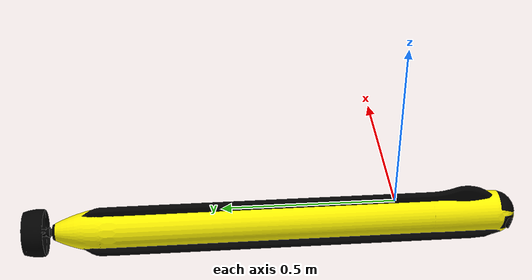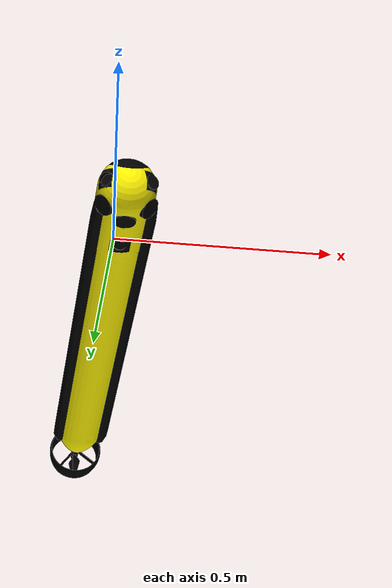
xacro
<?xml version="1.0"?>

<robot name="sam" xmlns:xacro="http://www.ros.org/wiki/xacro" >
  <xacro:arg name="debug" default="0"/>
  <xacro:arg name="namespace" default="sam"/>
  <xacro:include filename="$(find sam_description)/urdf/sam_auv_external.urdf.xacro"/>
  <xacro:sam_auv namespace="$(arg namespace)" debug="$(arg debug)"/>
</robot>

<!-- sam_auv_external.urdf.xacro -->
<robot name="sam" xmlns:xacro="http://www.ros.org/wiki/xacro">

  <!-- Meshes. -->
  <xacro:property name="visual_mesh_file" value="file://$(find sam_description)/mesh/SAM_HULL.dae"/>
  <xacro:property name="prop_nozzle" value="file://$(find sam_description)/mesh/SAM_NOZZLE.dae"/>
  <xacro:property name="front_prop" value="file://$(find sam_description)/mesh/SAM_FRONTPROP.dae"/>
  <xacro:property name="back_prop" value="file://$(find sam_description)/mesh/SAM_BACKPROP.dae"/>

  <xacro:macro name="sam_auv" params="namespace debug">
  <!-- Links. -->
  <link name="$(arg namespace)/base_link">
    <visual>
      <origin xyz="-0.677 0 0" rpy="0 0 0"/>
      <geometry>
        <mesh filename="${visual_mesh_file}" scale="1 1 1"/>
      </geometry>
    </visual>
  </link>

  <link name="$(arg namespace)/thruster_link">
    <visual>
      <origin xyz="0 0 0" rpy="0 0 0"/>
      <geometry>
        <mesh filename="${prop_nozzle}" scale="1 1 1"/>
      </geometry>
    </visual>
  </link>

  <link name="$(arg namespace)/front_prop_link">
    <visual>
      <origin xyz="0 0 0" rpy="0 0 0"/>
      <geometry>
        <mesh filename="${front_prop}" scale="1 1 1"/>
      </geometry>
    </visual>
  </link>

  <link name="$(arg namespace)/back_prop_link">
    <visual>
      <origin xyz="0 0 0" rpy="0 0 0"/>
      <geometry>
        <mesh filename="${back_prop}" scale="1 1 1"/>
      </geometry>
    </visual>
  </link>

  <link name="$(arg namespace)/thruster_yaw_link"/>
  <link name="$(arg namespace)/qr_link_0"/>
  <link name="$(arg namespace)/qr_link_optical_0"/>

  <joint name="$(arg namespace)/qr_0_joint" type="fixed">
    <parent link="$(arg namespace)/qr_link_optical_0"/>
    <child link="$(arg namespace)/qr_link_0"/>
    <origin rpy="0. 0. ${-pi/2}" xyz="0. 0. 0."/>
  </joint>

  <joint name="$(arg namespace)/base_joint" type="fixed">
    <parent link="$(arg namespace)/qr_link_0"/>
    <child link="$(arg namespace)/base_link"/>
    <origin rpy="0. 0. 0.0" xyz="-0.3 0. -0.057"/>
  </joint>

  <joint name="$(arg namespace)/thruster_yaw_joint" type="revolute">
    <parent link="$(arg namespace)/base_link"/>
    <child link="$(arg namespace)/thruster_yaw_link"/>
    <origin rpy="0.0 0.0 0.0" xyz="-0.677 0.0 0.0"/>
    <axis xyz="0 0 1"/>
    <limit lower="-0.2" upper="0.2" velocity="0.2" effort="1.0"/>
  </joint>

  <joint name="$(arg namespace)/thruster_pitch_joint" type="revolute">
    <parent link="$(arg namespace)/thruster_yaw_link"/>
    <child link="$(arg namespace)/thruster_link"/>
    <origin rpy="0.0 0.0 0.0" xyz="0.0 0.0 0.0"/>
    <axis xyz="0 1 0"/>
    <limit lower="-0.2" upper="0.2" velocity="0.2" effort="1.0"/>
  </joint>

  <joint name="$(arg namespace)/front_prop_joint" type="continuous">
    <parent link="$(arg namespace)/base_link"/>
    <child link="$(arg namespace)/front_prop_link"/>
    <origin rpy="0.0 0.0 0.0" xyz="-0.733 0 0"/>
    <axis xyz="1 0 0"/>
  </joint>

  <joint name="$(arg namespace)/back_prop_joint" type="continuous">
    <parent link="$(arg namespace)/base_link"/>
    <child link="$(arg namespace)/back_prop_link"/>
    <origin rpy="0.0 0.0 0.0" xyz="-0.751 0 0"/>
    <axis xyz="1 0 0"/>
  </joint>

  </xacro:macro>

</robot>
